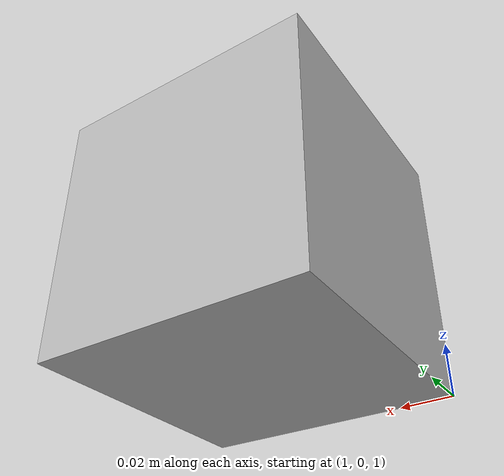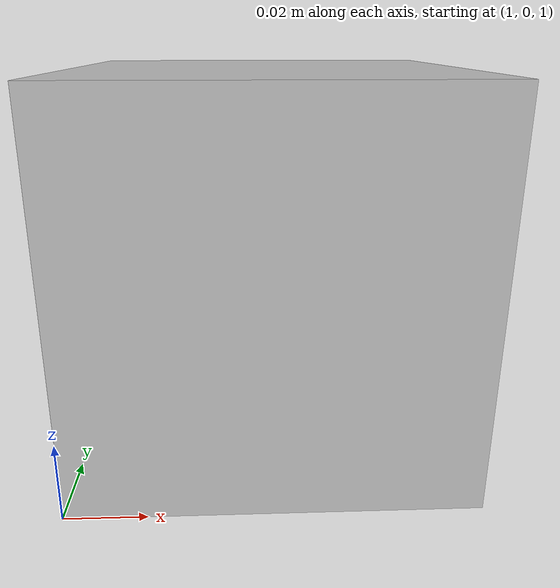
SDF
<?xml version="1.0" ?>
<sdf version="1.6">
    <model name="lidar_unit">
        <pose>1 0 1 0 0 0</pose>
        <link name="link">
            <pose>0.05 0.05 0.05 0 0 0</pose>
            <inertial>
                <mass>0.2</mass>
                <inertia>
                    <ixx>0.000166667</ixx>
                    <iyy>0.000166667</iyy>
                    <izz>0.000166667</izz>
                </inertia>
            </inertial>
            <collision name="collision">
                <geometry>
                    <box>
                        <size>0.1 0.1 0.1</size>
                    </box>
                </geometry>
                <surface>
                    <friction>
                        <ode>
                            <mu>0.0</mu>
                            <mu2>0.0</mu2>
                        </ode>
                    </friction>
                </surface>
            </collision>
            <visual name="visual">
                <geometry>
                    <box>
                        <size>0.1 0.1 0.1</size>
                    </box>
                </geometry>
            </visual>

            <sensor name='gpu_lidar' type='gpu_lidar'>
                <topic>lidar</topic>
                <update_rate>15</update_rate>
                <lidar>
                    <scan>
                        <horizontal>
                            <samples>360</samples>
                            <resolution>1</resolution>
                            <min_angle>-1.178097</min_angle>
                            <max_angle>1.178097</max_angle>
                        </horizontal>
                        <vertical>
                            <samples>1</samples>
                            <resolution>0.01</resolution>
                            <min_angle>0</min_angle>
                            <max_angle>0</max_angle>
                        </vertical>
                    </scan>
                    <range>
                        <min>0.05</min>
                        <max>10.0</max>
                        <resolution>0.01</resolution>
                    </range>
                </lidar>
                <alwaysOn>true</alwaysOn>
                <visualize>true</visualize>
            </sensor>
        </link>
        <plugin filename="ignition-gazebo-velocity-control-system" name="ignition::gazebo::systems::VelocityControl">
        </plugin>
    </model>
</sdf>
